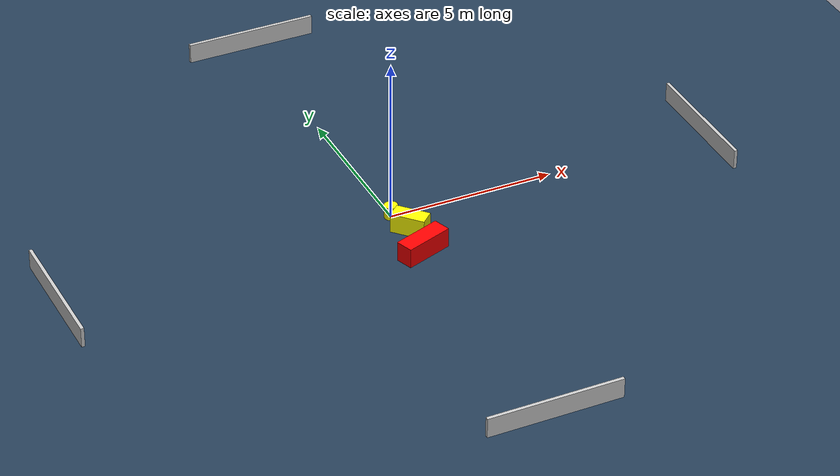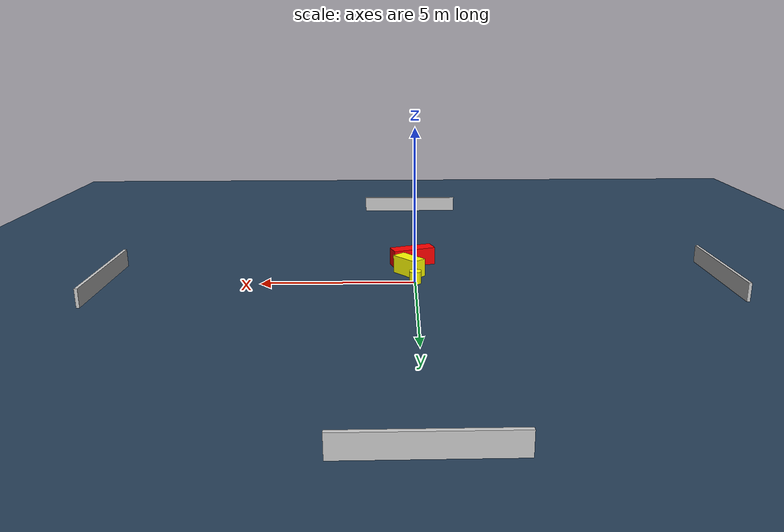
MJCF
<?xml version="1.0" ?>
<mujoco model="generated_environment">
  <option timestep="0.01" integrator="RK4" cone="elliptic"/>
  <default>
    <geom density="1"/>
  </default>
  <asset>
    <texture builtin="gradient" height="3072" name="skybox" rgb1="0.3 0.5 0.7" rgb2="0 0 0" type="skybox" width="512"/>
    <texture builtin="checker" height="300" name="groundplane" rgb1="0.2 0.3 0.4" rgb2="0.1 0.2 0.3" type="2d" width="300"/>
    <material name="groundplane" reflectance="0.2" texrepeat="5 5" texture="groundplane"/>
  </asset>
  <worldbody>
    <light dir="0 0 -1" directional="true" pos="0 0 1.5"/>
    <geom condim="3" friction="0.5 0.005 0.001" material="groundplane" name="floor" pos="0 0 0" size="0 0 0.05" type="plane"/>
    <body name="walls">
      <geom name="wall_1" condim="4" pos="-10.0 0.0 0.3" rgba="0.800000011920929 0.800000011920929 0.800000011920929 1.0" size="0.05 2.0 0.3" type="box"/>
      <geom name="wall_2" condim="4" pos="10.0 0.0 0.3" rgba="0.800000011920929 0.800000011920929 0.800000011920929 1.0" size="0.05 2.0 0.3" type="box"/>
      <geom name="wall_3" condim="4" pos="0.0 -10.0 0.3" rgba="0.800000011920929 0.800000011920929 0.800000011920929 1.0" size="2.0 0.05 0.3" type="box"/>
      <geom name="wall_4" condim="4" pos="0.0 10.0 0.3" rgba="0.800000011920929 0.800000011920929 0.800000011920929 1.0" size="2.0 0.05 0.3" type="box"/>
    </body>
    <body name="robot">
      <joint name="joint_x" type="slide" pos="0 0 0" axis="1 0 0"/>
      <joint name="joint_y" type="slide" pos="0 0 0" axis="0 1 0"/>
      <geom name="robot" type="cylinder" pos="0.0 0.0 0.2" size="0.2 0.2 0.0" mass="5.0" friction="1.0 0.005 0.0001" condim="4" rgba="1.0 1.0 0.0 1.0"/>
    </body>
    <body name="obstacle_1_movable">
      <geom name="obstacle_1_movable" condim="4" pos="0.1877321623642471 -0.876232606294239 0.3" euler="0 0 42.431611150462956" friction="0.0 0.005 0.001" rgba="1.0 1.0 0.0 1.0" size="0.2408176866748128 0.5086937704227381 0.3" type="box" mass="0.1"/>
      <joint type="free"/>
    </body>
    <body name="obstacle_2_static">
      <geom name="obstacle_2_static" condim="4" pos="0.05128229030088997 -1.9788738811153912 0.3" euler="0 0 289.2515292322708" friction="0.0 0.005 0.001" rgba="1.0 0.0 0.0 1.0" size="0.26363713701645664 0.7415467637215301 0.3" type="box"/>
    </body>
  </worldbody>
  <actuator>
    <motor name="actuator_x" joint="joint_x" gear="1" ctrlrange="-1 1"/>
    <motor name="actuator_y" joint="joint_y" gear="1" ctrlrange="-1 1"/>
  </actuator>
</mujoco>
